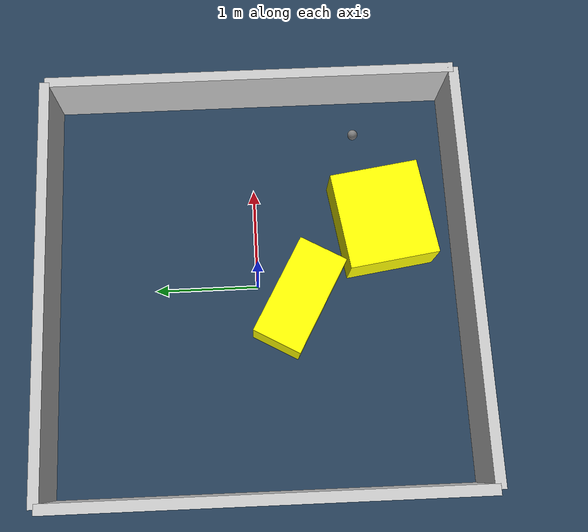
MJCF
<?xml version="1.0" ?>
<mujoco model="generated_environment">
  <option timestep="0.01" integrator="RK4" cone="elliptic"/>
  <default>
    <geom density="1"/>
  </default>
  <asset>
    <texture builtin="gradient" height="3072" rgb1="0.3 0.5 0.7" rgb2="0 0 0" type="skybox" width="512"/>
    <texture builtin="checker" height="300" mark="edge" markrgb="0.8 0.8 0.8" name="groundplane" rgb1="0.2 0.3 0.4" rgb2="0.1 0.2 0.3" type="2d" width="300"/>
    <material name="groundplane" reflectance="0.2" texrepeat="5 5" texture="groundplane" texuniform="true"/>
    <material name="robot" rgba="0.0 1.0 0.0 1"/>
  </asset>
  <worldbody>
    <light dir="0 0 -1" directional="true" pos="0 0 1.5"/>
    <geom condim="4" friction="1.0 0.005 0.001" material="groundplane" name="floor" size="0 0 0.05" type="plane"/>
    <body name="walls">
      <geom name="wall_1" condim="4" pos="-2.0 0.0 0.3" rgba="0.800000011920929 0.800000011920929 0.800000011920929 1.0" size="0.05 2.0 0.3" type="box"/>
      <geom name="wall_2" condim="4" pos="2.0 0.0 0.3" rgba="0.800000011920929 0.800000011920929 0.800000011920929 1.0" size="0.05 2.0 0.3" type="box"/>
      <geom name="wall_3" condim="4" pos="0.0 -2.0 0.3" rgba="0.800000011920929 0.800000011920929 0.800000011920929 1.0" size="2.0 0.05 0.3" type="box"/>
      <geom name="wall_4" condim="4" pos="0.0 2.0 0.3" rgba="0.800000011920929 0.800000011920929 0.800000011920929 1.0" size="2.0 0.05 0.3" type="box"/>
    </body>
    <body name="robot">
      <joint name="joint_x" type="slide" pos="0 0 0" axis="1 0 0"/>
      <joint name="joint_y" type="slide" pos="0 0 0" axis="0 1 0"/>
      <geom name="robot" type="sphere" pos="1.501735456500576 -1.0237432410280016 0.2" size="0.05" mass="5." friction="1.0 0.005 0.0001" condim="4"/>
      <site name="sensor_ball"/>
    </body>
    <body name="obstacle_1_movable">
      <geom name="obstacle_1_movable" condim="4" pos="-0.17357497423087476 -0.39248707472879363 0.2" euler="0 0 150.78131428536497" friction="1.0 0.005 0.001" rgba="1 1 0 1" size="0.5035914457234996 0.2439273141245137 0.2" type="box" mass="0.1"/>
      <joint type="free"/>
    </body>
    <body name="obstacle_2_movable">
      <geom name="obstacle_2_movable" condim="4" pos="0.591221718038768 -1.2426311131162666 0.2" euler="0 0 278.66048603453146" friction="1.0 0.005 0.001" rgba="1 1 0 1" size="0.4321148106451913 0.47394833447981305 0.2" type="box" mass="0.1"/>
      <joint type="free"/>
    </body>
  </worldbody>
  <actuator>
    <motor name="actuator_x" joint="joint_x" gear="1" ctrlrange="-1 1"/>
    <motor name="actuator_y" joint="joint_y" gear="1" ctrlrange="-1 1"/>
  </actuator>
</mujoco>
